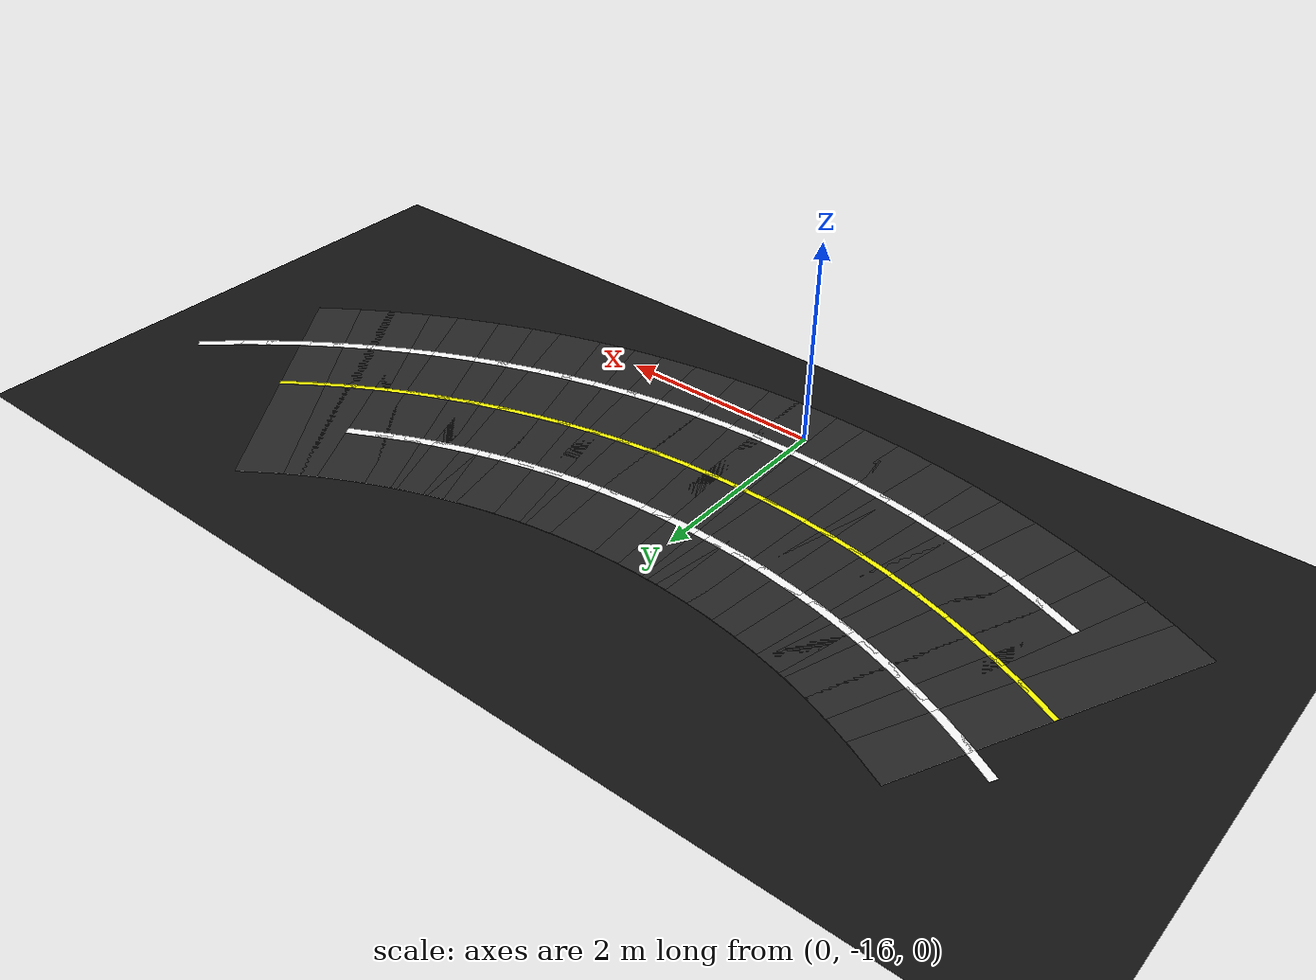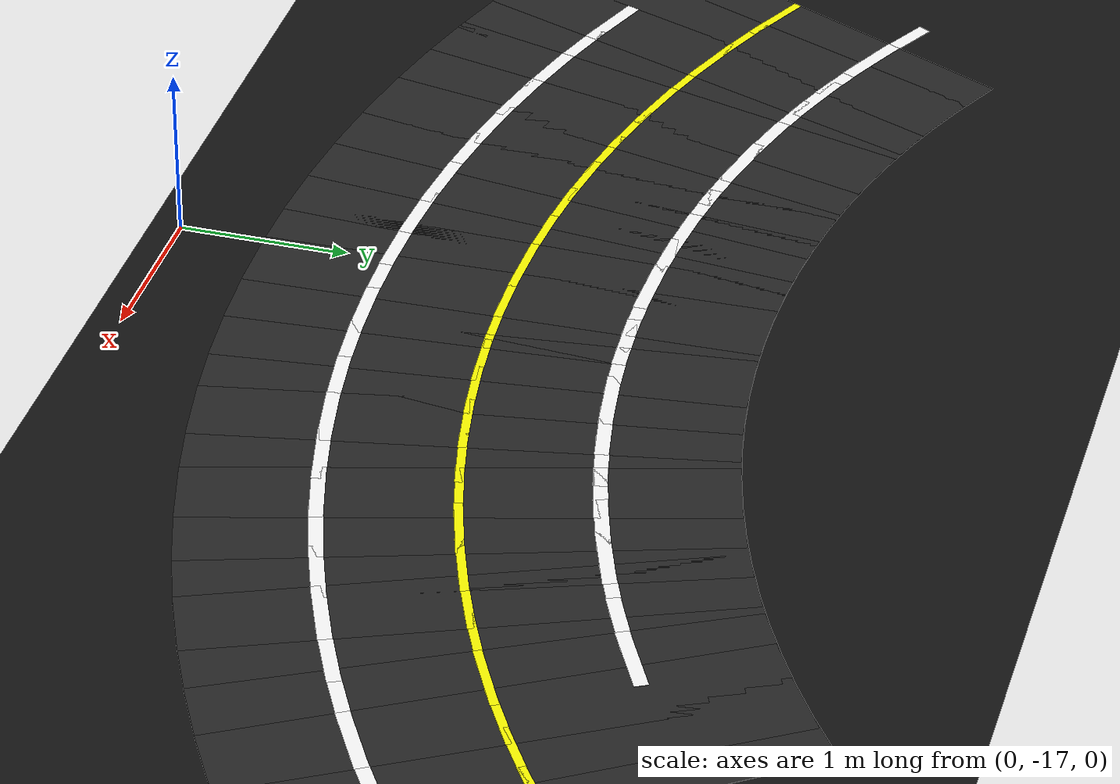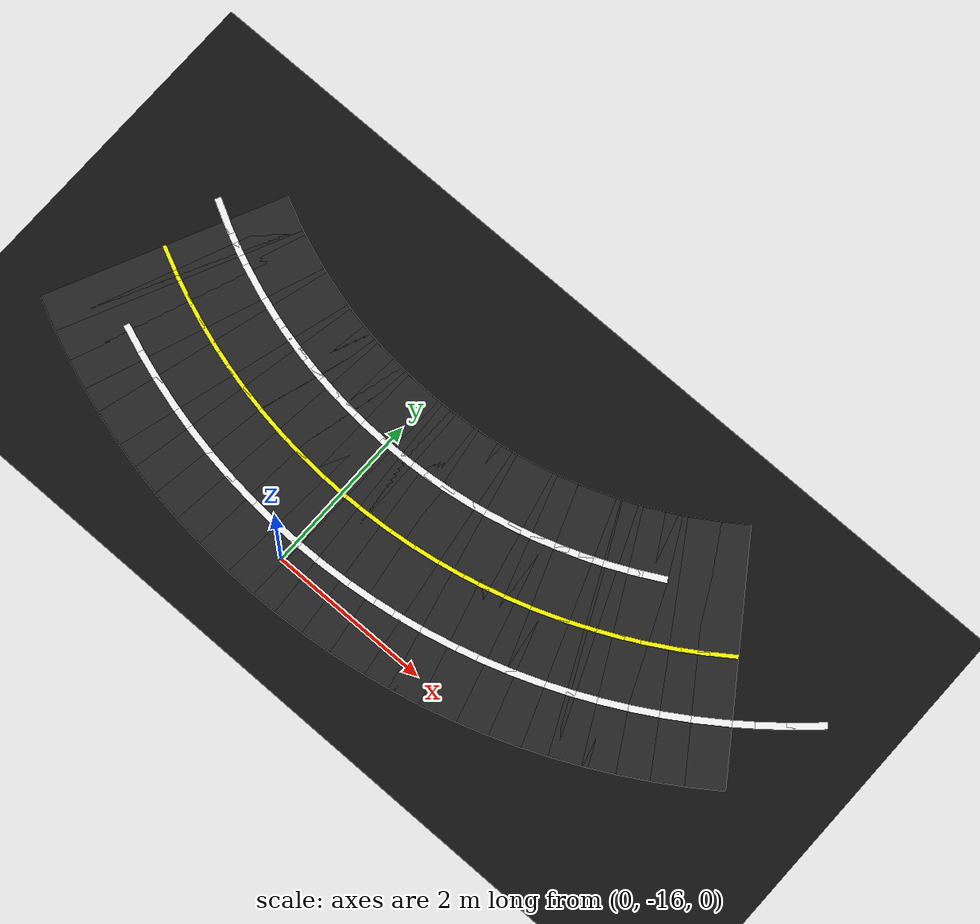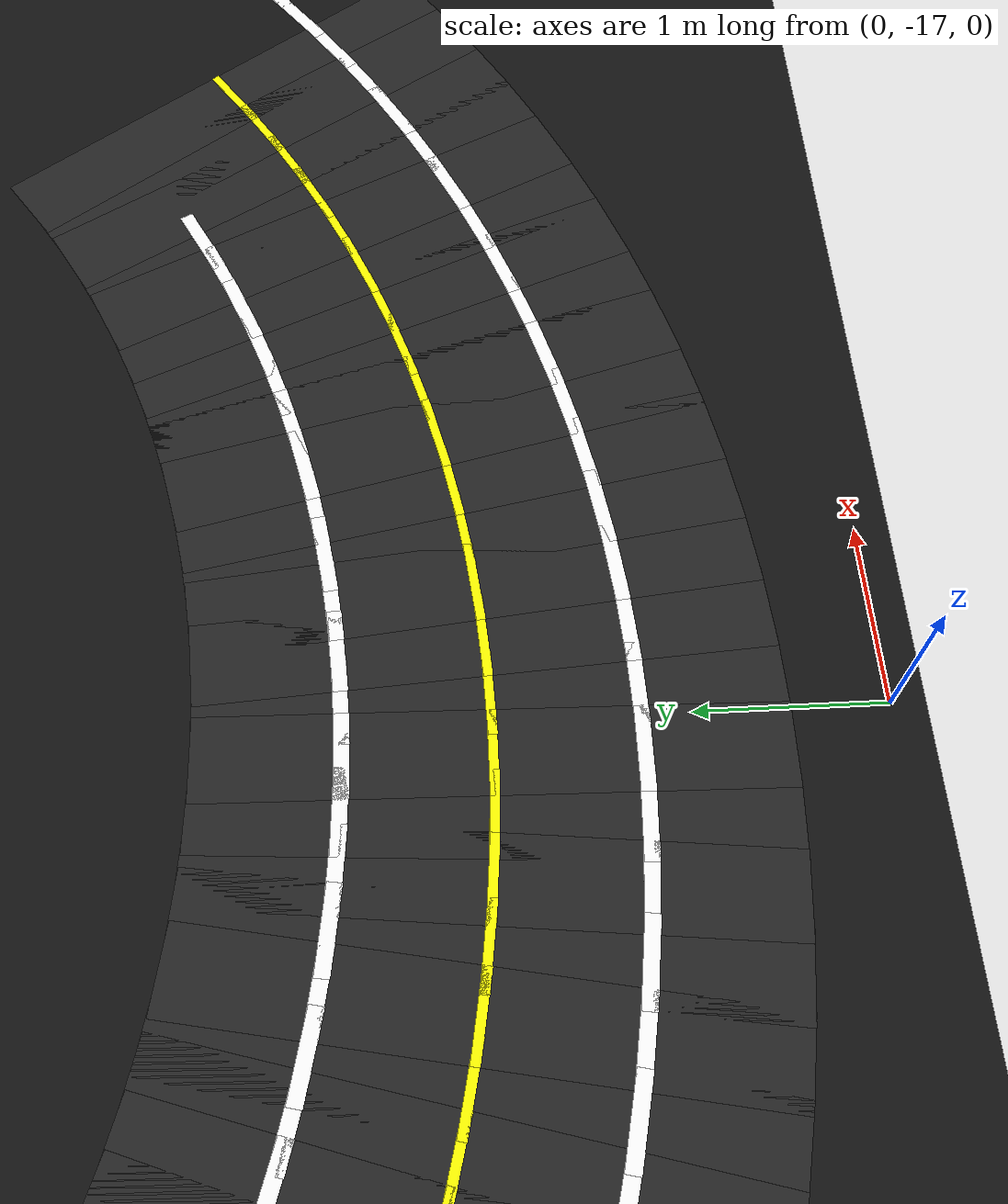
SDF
<sdf version="1.6">
 <world name="figure8_world">
  <model name="ground_plane">
   <static>true</static>
   <link name="link">
    <collision name="collision">
     <geometry><plane><normal>0 0 1</normal><size>100 100</size></plane></geometry>
    </collision>
    <visual name="visual">
     <geometry><plane><normal>0 0 1</normal><size>100 100</size></plane></geometry>
     <material><ambient>0.08 0.08 0.08 1</ambient><diffuse>0.08 0.08 0.08 1</diffuse></material>
    </visual>
   </link>
  </model>
  <model name="seg_00757">
   <static>true</static>
   <pose>5.5504 -13.6037 0.0030 0 0 -2.4036</pose>
   <link name="link">
    <collision name="collision"><geometry><box><size>0.4500 0.0800 0.002</size></box></geometry></collision>
    <visual name="visual">
     <geometry><box><size>0.4500 0.0800 0.002</size></box></geometry>
     <material><ambient>1 1 1 1</ambient><diffuse>1 1 1 1</diffuse></material>
    </visual>
   </link>
  </model>
  <model name="seg_00761">
   <static>true</static>
   <pose>5.2882 -13.8323 0.0030 0 0 -2.4458</pose>
   <link name="link">
    <collision name="collision"><geometry><box><size>0.4500 0.0800 0.002</size></box></geometry></collision>
    <visual name="visual">
     <geometry><box><size>0.4500 0.0800 0.002</size></box></geometry>
     <material><ambient>1 1 1 1</ambient><diffuse>1 1 1 1</diffuse></material>
    </visual>
   </link>
  </model>
  <model name="seg_00765">
   <static>true</static>
   <pose>5.0165 -14.0496 0.0030 0 0 -2.4880</pose>
   <link name="link">
    <collision name="collision"><geometry><box><size>0.4500 0.0800 0.002</size></box></geometry></collision>
    <visual name="visual">
     <geometry><box><size>0.4500 0.0800 0.002</size></box></geometry>
     <material><ambient>1 1 1 1</ambient><diffuse>1 1 1 1</diffuse></material>
    </visual>
   </link>
  </model>
  <model name="seg_00768">
   <static>true</static>
   <pose>4.3054 -13.6411 0.0010 0 0 -2.5301</pose>
   <link name="link">
    <collision name="collision"><geometry><box><size>0.4500 3.0000 0.002</size></box></geometry></collision>
    <visual name="visual">
     <geometry><box><size>0.4500 3.0000 0.002</size></box></geometry>
     <material><ambient>0.15 0.15 0.15 1</ambient><diffuse>0.15 0.15 0.15 1</diffuse></material>
    </visual>
   </link>
  </model>
  <model name="seg_00769">
   <static>true</static>
   <pose>4.7360 -14.2552 0.0030 0 0 -2.5301</pose>
   <link name="link">
    <collision name="collision"><geometry><box><size>0.4500 0.0800 0.002</size></box></geometry></collision>
    <visual name="visual">
     <geometry><box><size>0.4500 0.0800 0.002</size></box></geometry>
     <material><ambient>1 1 1 1</ambient><diffuse>1 1 1 1</diffuse></material>
    </visual>
   </link>
  </model>
  <model name="seg_00771">
   <static>true</static>
   <pose>4.3054 -13.6411 0.0030 0 0 -2.5301</pose>
   <link name="link">
    <collision name="collision"><geometry><box><size>0.4500 0.0500 0.002</size></box></geometry></collision>
    <visual name="visual">
     <geometry><box><size>0.4500 0.0500 0.002</size></box></geometry>
     <material><ambient>1 1 0 1</ambient><diffuse>1 1 0 1</diffuse></material>
    </visual>
   </link>
  </model>
  <model name="seg_00772">
   <static>true</static>
   <pose>4.0427 -13.8172 0.0010 0 0 -2.5723</pose>
   <link name="link">
    <collision name="collision"><geometry><box><size>0.4500 3.0000 0.002</size></box></geometry></collision>
    <visual name="visual">
     <geometry><box><size>0.4500 3.0000 0.002</size></box></geometry>
     <material><ambient>0.15 0.15 0.15 1</ambient><diffuse>0.15 0.15 0.15 1</diffuse></material>
    </visual>
   </link>
  </model>
  <model name="seg_00773">
   <static>true</static>
   <pose>4.4470 -14.4489 0.0030 0 0 -2.5723</pose>
   <link name="link">
    <collision name="collision"><geometry><box><size>0.4500 0.0800 0.002</size></box></geometry></collision>
    <visual name="visual">
     <geometry><box><size>0.4500 0.0800 0.002</size></box></geometry>
     <material><ambient>1 1 1 1</ambient><diffuse>1 1 1 1</diffuse></material>
    </visual>
   </link>
  </model>
  <model name="seg_00775">
   <static>true</static>
   <pose>4.0427 -13.8172 0.0030 0 0 -2.5723</pose>
   <link name="link">
    <collision name="collision"><geometry><box><size>0.4500 0.0500 0.002</size></box></geometry></collision>
    <visual name="visual">
     <geometry><box><size>0.4500 0.0500 0.002</size></box></geometry>
     <material><ambient>1 1 0 1</ambient><diffuse>1 1 0 1</diffuse></material>
    </visual>
   </link>
  </model>
  <model name="seg_00776">
   <static>true</static>
   <pose>3.7728 -13.9820 0.0010 0 0 -2.6145</pose>
   <link name="link">
    <collision name="collision"><geometry><box><size>0.4500 3.0000 0.002</size></box></geometry></collision>
    <visual name="visual">
     <geometry><box><size>0.4500 3.0000 0.002</size></box></geometry>
     <material><ambient>0.15 0.15 0.15 1</ambient><diffuse>0.15 0.15 0.15 1</diffuse></material>
    </visual>
   </link>
  </model>
  <model name="seg_00777">
   <static>true</static>
   <pose>4.1501 -14.6302 0.0030 0 0 -2.6145</pose>
   <link name="link">
    <collision name="collision"><geometry><box><size>0.4500 0.0800 0.002</size></box></geometry></collision>
    <visual name="visual">
     <geometry><box><size>0.4500 0.0800 0.002</size></box></geometry>
     <material><ambient>1 1 1 1</ambient><diffuse>1 1 1 1</diffuse></material>
    </visual>
   </link>
  </model>
  <model name="seg_00779">
   <static>true</static>
   <pose>3.7728 -13.9820 0.0030 0 0 -2.6145</pose>
   <link name="link">
    <collision name="collision"><geometry><box><size>0.4500 0.0500 0.002</size></box></geometry></collision>
    <visual name="visual">
     <geometry><box><size>0.4500 0.0500 0.002</size></box></geometry>
     <material><ambient>1 1 0 1</ambient><diffuse>1 1 0 1</diffuse></material>
    </visual>
   </link>
  </model>
  <model name="seg_00780">
   <static>true</static>
   <pose>3.4962 -14.1353 0.0010 0 0 -2.6566</pose>
   <link name="link">
    <collision name="collision"><geometry><box><size>0.4500 3.0000 0.002</size></box></geometry></collision>
    <visual name="visual">
     <geometry><box><size>0.4500 3.0000 0.002</size></box></geometry>
     <material><ambient>0.15 0.15 0.15 1</ambient><diffuse>0.15 0.15 0.15 1</diffuse></material>
    </visual>
   </link>
  </model>
  <model name="seg_00781">
   <static>true</static>
   <pose>3.8458 -14.7988 0.0030 0 0 -2.6566</pose>
   <link name="link">
    <collision name="collision"><geometry><box><size>0.4500 0.0800 0.002</size></box></geometry></collision>
    <visual name="visual">
     <geometry><box><size>0.4500 0.0800 0.002</size></box></geometry>
     <material><ambient>1 1 1 1</ambient><diffuse>1 1 1 1</diffuse></material>
    </visual>
   </link>
  </model>
  <model name="seg_00782">
   <static>true</static>
   <pose>3.1466 -13.4717 0.0030 0 0 -2.6566</pose>
   <link name="link">
    <collision name="collision"><geometry><box><size>0.4500 0.0800 0.002</size></box></geometry></collision>
    <visual name="visual">
     <geometry><box><size>0.4500 0.0800 0.002</size></box></geometry>
     <material><ambient>1 1 1 1</ambient><diffuse>1 1 1 1</diffuse></material>
    </visual>
   </link>
  </model>
  <model name="seg_00783">
   <static>true</static>
   <pose>3.4962 -14.1353 0.0030 0 0 -2.6566</pose>
   <link name="link">
    <collision name="collision"><geometry><box><size>0.4500 0.0500 0.002</size></box></geometry></collision>
    <visual name="visual">
     <geometry><box><size>0.4500 0.0500 0.002</size></box></geometry>
     <material><ambient>1 1 0 1</ambient><diffuse>1 1 0 1</diffuse></material>
    </visual>
   </link>
  </model>
  <model name="seg_00784">
   <static>true</static>
   <pose>3.2134 -14.2767 0.0010 0 0 -2.6988</pose>
   <link name="link">
    <collision name="collision"><geometry><box><size>0.4500 3.0000 0.002</size></box></geometry></collision>
    <visual name="visual">
     <geometry><box><size>0.4500 3.0000 0.002</size></box></geometry>
     <material><ambient>0.15 0.15 0.15 1</ambient><diffuse>0.15 0.15 0.15 1</diffuse></material>
    </visual>
   </link>
  </model>
  <model name="seg_00785">
   <static>true</static>
   <pose>3.5347 -14.9544 0.0030 0 0 -2.6988</pose>
   <link name="link">
    <collision name="collision"><geometry><box><size>0.4500 0.0800 0.002</size></box></geometry></collision>
    <visual name="visual">
     <geometry><box><size>0.4500 0.0800 0.002</size></box></geometry>
     <material><ambient>1 1 1 1</ambient><diffuse>1 1 1 1</diffuse></material>
    </visual>
   </link>
  </model>
  <model name="seg_00786">
   <static>true</static>
   <pose>2.8920 -13.5991 0.0030 0 0 -2.6988</pose>
   <link name="link">
    <collision name="collision"><geometry><box><size>0.4500 0.0800 0.002</size></box></geometry></collision>
    <visual name="visual">
     <geometry><box><size>0.4500 0.0800 0.002</size></box></geometry>
     <material><ambient>1 1 1 1</ambient><diffuse>1 1 1 1</diffuse></material>
    </visual>
   </link>
  </model>
  <model name="seg_00787">
   <static>true</static>
   <pose>3.2134 -14.2767 0.0030 0 0 -2.6988</pose>
   <link name="link">
    <collision name="collision"><geometry><box><size>0.4500 0.0500 0.002</size></box></geometry></collision>
    <visual name="visual">
     <geometry><box><size>0.4500 0.0500 0.002</size></box></geometry>
     <material><ambient>1 1 0 1</ambient><diffuse>1 1 0 1</diffuse></material>
    </visual>
   </link>
  </model>
  <model name="seg_00788">
   <static>true</static>
   <pose>2.9248 -14.4062 0.0010 0 0 -2.7410</pose>
   <link name="link">
    <collision name="collision"><geometry><box><size>0.4500 3.0000 0.002</size></box></geometry></collision>
    <visual name="visual">
     <geometry><box><size>0.4500 3.0000 0.002</size></box></geometry>
     <material><ambient>0.15 0.15 0.15 1</ambient><diffuse>0.15 0.15 0.15 1</diffuse></material>
    </visual>
   </link>
  </model>
  <model name="seg_00789">
   <static>true</static>
   <pose>3.2173 -15.0968 0.0030 0 0 -2.7410</pose>
   <link name="link">
    <collision name="collision"><geometry><box><size>0.4500 0.0800 0.002</size></box></geometry></collision>
    <visual name="visual">
     <geometry><box><size>0.4500 0.0800 0.002</size></box></geometry>
     <material><ambient>1 1 1 1</ambient><diffuse>1 1 1 1</diffuse></material>
    </visual>
   </link>
  </model>
  <model name="seg_00790">
   <static>true</static>
   <pose>2.6323 -13.7156 0.0030 0 0 -2.7410</pose>
   <link name="link">
    <collision name="collision"><geometry><box><size>0.4500 0.0800 0.002</size></box></geometry></collision>
    <visual name="visual">
     <geometry><box><size>0.4500 0.0800 0.002</size></box></geometry>
     <material><ambient>1 1 1 1</ambient><diffuse>1 1 1 1</diffuse></material>
    </visual>
   </link>
  </model>
  <model name="seg_00791">
   <static>true</static>
   <pose>2.9248 -14.4062 0.0030 0 0 -2.7410</pose>
   <link name="link">
    <collision name="collision"><geometry><box><size>0.4500 0.0500 0.002</size></box></geometry></collision>
    <visual name="visual">
     <geometry><box><size>0.4500 0.0500 0.002</size></box></geometry>
     <material><ambient>1 1 0 1</ambient><diffuse>1 1 0 1</diffuse></material>
    </visual>
   </link>
  </model>
  <model name="seg_00792">
   <static>true</static>
   <pose>2.6311 -14.5233 0.0010 0 0 -2.7832</pose>
   <link name="link">
    <collision name="collision"><geometry><box><size>0.4500 3.0000 0.002</size></box></geometry></collision>
    <visual name="visual">
     <geometry><box><size>0.4500 3.0000 0.002</size></box></geometry>
     <material><ambient>0.15 0.15 0.15 1</ambient><diffuse>0.15 0.15 0.15 1</diffuse></material>
    </visual>
   </link>
  </model>
  <model name="seg_00793">
   <static>true</static>
   <pose>2.8942 -15.2257 0.0030 0 0 -2.7832</pose>
   <link name="link">
    <collision name="collision"><geometry><box><size>0.4500 0.0800 0.002</size></box></geometry></collision>
    <visual name="visual">
     <geometry><box><size>0.4500 0.0800 0.002</size></box></geometry>
     <material><ambient>1 1 1 1</ambient><diffuse>1 1 1 1</diffuse></material>
    </visual>
   </link>
  </model>
  <model name="seg_00794">
   <static>true</static>
   <pose>2.3680 -13.8210 0.0030 0 0 -2.7832</pose>
   <link name="link">
    <collision name="collision"><geometry><box><size>0.4500 0.0800 0.002</size></box></geometry></collision>
    <visual name="visual">
     <geometry><box><size>0.4500 0.0800 0.002</size></box></geometry>
     <material><ambient>1 1 1 1</ambient><diffuse>1 1 1 1</diffuse></material>
    </visual>
   </link>
  </model>
  <model name="seg_00795">
   <static>true</static>
   <pose>2.6311 -14.5233 0.0030 0 0 -2.7832</pose>
   <link name="link">
    <collision name="collision"><geometry><box><size>0.4500 0.0500 0.002</size></box></geometry></collision>
    <visual name="visual">
     <geometry><box><size>0.4500 0.0500 0.002</size></box></geometry>
     <material><ambient>1 1 0 1</ambient><diffuse>1 1 0 1</diffuse></material>
    </visual>
   </link>
  </model>
  <model name="seg_00796">
   <static>true</static>
   <pose>2.3327 -14.6280 0.0010 0 0 -2.8253</pose>
   <link name="link">
    <collision name="collision"><geometry><box><size>0.4500 3.0000 0.002</size></box></geometry></collision>
    <visual name="visual">
     <geometry><box><size>0.4500 3.0000 0.002</size></box></geometry>
     <material><ambient>0.15 0.15 0.15 1</ambient><diffuse>0.15 0.15 0.15 1</diffuse></material>
    </visual>
   </link>
  </model>
  <model name="seg_00797">
   <static>true</static>
   <pose>2.5659 -15.3408 0.0030 0 0 -2.8253</pose>
   <link name="link">
    <collision name="collision"><geometry><box><size>0.4500 0.0800 0.002</size></box></geometry></collision>
    <visual name="visual">
     <geometry><box><size>0.4500 0.0800 0.002</size></box></geometry>
     <material><ambient>1 1 1 1</ambient><diffuse>1 1 1 1</diffuse></material>
    </visual>
   </link>
  </model>
  <model name="seg_00798">
   <static>true</static>
   <pose>2.0994 -13.9152 0.0030 0 0 -2.8253</pose>
   <link name="link">
    <collision name="collision"><geometry><box><size>0.4500 0.0800 0.002</size></box></geometry></collision>
    <visual name="visual">
     <geometry><box><size>0.4500 0.0800 0.002</size></box></geometry>
     <material><ambient>1 1 1 1</ambient><diffuse>1 1 1 1</diffuse></material>
    </visual>
   </link>
  </model>
  <model name="seg_00799">
   <static>true</static>
   <pose>2.3327 -14.6280 0.0030 0 0 -2.8253</pose>
   <link name="link">
    <collision name="collision"><geometry><box><size>0.4500 0.0500 0.002</size></box></geometry></collision>
    <visual name="visual">
     <geometry><box><size>0.4500 0.0500 0.002</size></box></geometry>
     <material><ambient>1 1 0 1</ambient><diffuse>1 1 0 1</diffuse></material>
    </visual>
   </link>
  </model>
  <model name="seg_00800">
   <static>true</static>
   <pose>2.0301 -14.7200 0.0010 0 0 -2.8675</pose>
   <link name="link">
    <collision name="collision"><geometry><box><size>0.4500 3.0000 0.002</size></box></geometry></collision>
    <visual name="visual">
     <geometry><box><size>0.4500 3.0000 0.002</size></box></geometry>
     <material><ambient>0.15 0.15 0.15 1</ambient><diffuse>0.15 0.15 0.15 1</diffuse></material>
    </visual>
   </link>
  </model>
  <model name="seg_00801">
   <static>true</static>
   <pose>2.2331 -15.4420 0.0030 0 0 -2.8675</pose>
   <link name="link">
    <collision name="collision"><geometry><box><size>0.4500 0.0800 0.002</size></box></geometry></collision>
    <visual name="visual">
     <geometry><box><size>0.4500 0.0800 0.002</size></box></geometry>
     <material><ambient>1 1 1 1</ambient><diffuse>1 1 1 1</diffuse></material>
    </visual>
   </link>
  </model>
  <model name="seg_00802">
   <static>true</static>
   <pose>1.8271 -13.9980 0.0030 0 0 -2.8675</pose>
   <link name="link">
    <collision name="collision"><geometry><box><size>0.4500 0.0800 0.002</size></box></geometry></collision>
    <visual name="visual">
     <geometry><box><size>0.4500 0.0800 0.002</size></box></geometry>
     <material><ambient>1 1 1 1</ambient><diffuse>1 1 1 1</diffuse></material>
    </visual>
   </link>
  </model>
  <model name="seg_00803">
   <static>true</static>
   <pose>2.0301 -14.7200 0.0030 0 0 -2.8675</pose>
   <link name="link">
    <collision name="collision"><geometry><box><size>0.4500 0.0500 0.002</size></box></geometry></collision>
    <visual name="visual">
     <geometry><box><size>0.4500 0.0500 0.002</size></box></geometry>
     <material><ambient>1 1 0 1</ambient><diffuse>1 1 0 1</diffuse></material>
    </visual>
   </link>
  </model>
  <model name="seg_00804">
   <static>true</static>
   <pose>1.7239 -14.7992 0.0010 0 0 -2.9097</pose>
   <link name="link">
    <collision name="collision"><geometry><box><size>0.4500 3.0000 0.002</size></box></geometry></collision>
    <visual name="visual">
     <geometry><box><size>0.4500 3.0000 0.002</size></box></geometry>
     <material><ambient>0.15 0.15 0.15 1</ambient><diffuse>0.15 0.15 0.15 1</diffuse></material>
    </visual>
   </link>
  </model>
  <model name="seg_00805">
   <static>true</static>
   <pose>1.8963 -15.5291 0.0030 0 0 -2.9097</pose>
   <link name="link">
    <collision name="collision"><geometry><box><size>0.4500 0.0800 0.002</size></box></geometry></collision>
    <visual name="visual">
     <geometry><box><size>0.4500 0.0800 0.002</size></box></geometry>
     <material><ambient>1 1 1 1</ambient><diffuse>1 1 1 1</diffuse></material>
    </visual>
   </link>
  </model>
  <model name="seg_00806">
   <static>true</static>
   <pose>1.5515 -14.0693 0.0030 0 0 -2.9097</pose>
   <link name="link">
    <collision name="collision"><geometry><box><size>0.4500 0.0800 0.002</size></box></geometry></collision>
    <visual name="visual">
     <geometry><box><size>0.4500 0.0800 0.002</size></box></geometry>
     <material><ambient>1 1 1 1</ambient><diffuse>1 1 1 1</diffuse></material>
    </visual>
   </link>
  </model>
  <model name="seg_00807">
   <static>true</static>
   <pose>1.7239 -14.7992 0.0030 0 0 -2.9097</pose>
   <link name="link">
    <collision name="collision"><geometry><box><size>0.4500 0.0500 0.002</size></box></geometry></collision>
    <visual name="visual">
     <geometry><box><size>0.4500 0.0500 0.002</size></box></geometry>
     <material><ambient>1 1 0 1</ambient><diffuse>1 1 0 1</diffuse></material>
    </visual>
   </link>
  </model>
  <model name="seg_00808">
   <static>true</static>
   <pose>1.4147 -14.8654 0.0010 0 0 -2.9518</pose>
   <link name="link">
    <collision name="collision"><geometry><box><size>0.4500 3.0000 0.002</size></box></geometry></collision>
    <visual name="visual">
     <geometry><box><size>0.4500 3.0000 0.002</size></box></geometry>
     <material><ambient>0.15 0.15 0.15 1</ambient><diffuse>0.15 0.15 0.15 1</diffuse></material>
    </visual>
   </link>
  </model>
  <model name="seg_00809">
   <static>true</static>
   <pose>1.5561 -15.6019 0.0030 0 0 -2.9518</pose>
   <link name="link">
    <collision name="collision"><geometry><box><size>0.4500 0.0800 0.002</size></box></geometry></collision>
    <visual name="visual">
     <geometry><box><size>0.4500 0.0800 0.002</size></box></geometry>
     <material><ambient>1 1 1 1</ambient><diffuse>1 1 1 1</diffuse></material>
    </visual>
   </link>
  </model>
  <model name="seg_00810">
   <static>true</static>
   <pose>1.2732 -14.1288 0.0030 0 0 -2.9518</pose>
   <link name="link">
    <collision name="collision"><geometry><box><size>0.4500 0.0800 0.002</size></box></geometry></collision>
    <visual name="visual">
     <geometry><box><size>0.4500 0.0800 0.002</size></box></geometry>
     <material><ambient>1 1 1 1</ambient><diffuse>1 1 1 1</diffuse></material>
    </visual>
   </link>
  </model>
  <model name="seg_00811">
   <static>true</static>
   <pose>1.4147 -14.8654 0.0030 0 0 -2.9518</pose>
   <link name="link">
    <collision name="collision"><geometry><box><size>0.4500 0.0500 0.002</size></box></geometry></collision>
    <visual name="visual">
     <geometry><box><size>0.4500 0.0500 0.002</size></box></geometry>
     <material><ambient>1 1 0 1</ambient><diffuse>1 1 0 1</diffuse></material>
    </visual>
   </link>
  </model>
  <model name="seg_00812">
   <static>true</static>
   <pose>1.1029 -14.9185 0.0010 0 0 -2.9940</pose>
   <link name="link">
    <collision name="collision"><geometry><box><size>0.4500 3.0000 0.002</size></box></geometry></collision>
    <visual name="visual">
     <geometry><box><size>0.4500 3.0000 0.002</size></box></geometry>
     <material><ambient>0.15 0.15 0.15 1</ambient><diffuse>0.15 0.15 0.15 1</diffuse></material>
    </visual>
   </link>
  </model>
  <model name="seg_00813">
   <static>true</static>
   <pose>1.2132 -15.6603 0.0030 0 0 -2.9940</pose>
   <link name="link">
    <collision name="collision"><geometry><box><size>0.4500 0.0800 0.002</size></box></geometry></collision>
    <visual name="visual">
     <geometry><box><size>0.4500 0.0800 0.002</size></box></geometry>
     <material><ambient>1 1 1 1</ambient><diffuse>1 1 1 1</diffuse></material>
    </visual>
   </link>
  </model>
  <model name="seg_00814">
   <static>true</static>
   <pose>0.9926 -14.1766 0.0030 0 0 -2.9940</pose>
   <link name="link">
    <collision name="collision"><geometry><box><size>0.4500 0.0800 0.002</size></box></geometry></collision>
    <visual name="visual">
     <geometry><box><size>0.4500 0.0800 0.002</size></box></geometry>
     <material><ambient>1 1 1 1</ambient><diffuse>1 1 1 1</diffuse></material>
    </visual>
   </link>
  </model>
  <model name="seg_00815">
   <static>true</static>
   <pose>1.1029 -14.9185 0.0030 0 0 -2.9940</pose>
   <link name="link">
    <collision name="collision"><geometry><box><size>0.4500 0.0500 0.002</size></box></geometry></collision>
    <visual name="visual">
     <geometry><box><size>0.4500 0.0500 0.002</size></box></geometry>
     <material><ambient>1 1 0 1</ambient><diffuse>1 1 0 1</diffuse></material>
    </visual>
   </link>
  </model>
  <model name="seg_00816">
   <static>true</static>
   <pose>0.7892 -14.9584 0.0010 0 0 -3.0362</pose>
   <link name="link">
    <collision name="collision"><geometry><box><size>0.4500 3.0000 0.002</size></box></geometry></collision>
    <visual name="visual">
     <geometry><box><size>0.4500 3.0000 0.002</size></box></geometry>
     <material><ambient>0.15 0.15 0.15 1</ambient><diffuse>0.15 0.15 0.15 1</diffuse></material>
    </visual>
   </link>
  </model>
  <model name="seg_00817">
   <static>true</static>
   <pose>0.8681 -15.7042 0.0030 0 0 -3.0362</pose>
   <link name="link">
    <collision name="collision"><geometry><box><size>0.4500 0.0800 0.002</size></box></geometry></collision>
    <visual name="visual">
     <geometry><box><size>0.4500 0.0800 0.002</size></box></geometry>
     <material><ambient>1 1 1 1</ambient><diffuse>1 1 1 1</diffuse></material>
    </visual>
   </link>
  </model>
  <model name="seg_00818">
   <static>true</static>
   <pose>0.7103 -14.2125 0.0030 0 0 -3.0362</pose>
   <link name="link">
    <collision name="collision"><geometry><box><size>0.4500 0.0800 0.002</size></box></geometry></collision>
    <visual name="visual">
     <geometry><box><size>0.4500 0.0800 0.002</size></box></geometry>
     <material><ambient>1 1 1 1</ambient><diffuse>1 1 1 1</diffuse></material>
    </visual>
   </link>
  </model>
  <model name="seg_00819">
   <static>true</static>
   <pose>0.7892 -14.9584 0.0030 0 0 -3.0362</pose>
   <link name="link">
    <collision name="collision"><geometry><box><size>0.4500 0.0500 0.002</size></box></geometry></collision>
    <visual name="visual">
     <geometry><box><size>0.4500 0.0500 0.002</size></box></geometry>
     <material><ambient>1 1 0 1</ambient><diffuse>1 1 0 1</diffuse></material>
    </visual>
   </link>
  </model>
  <model name="seg_00820">
   <static>true</static>
   <pose>0.4741 -14.9850 0.0010 0 0 -3.0783</pose>
   <link name="link">
    <collision name="collision"><geometry><box><size>0.4500 3.0000 0.002</size></box></geometry></collision>
    <visual name="visual">
     <geometry><box><size>0.4500 3.0000 0.002</size></box></geometry>
     <material><ambient>0.15 0.15 0.15 1</ambient><diffuse>0.15 0.15 0.15 1</diffuse></material>
    </visual>
   </link>
  </model>
  <model name="seg_00821">
   <static>true</static>
   <pose>0.5215 -15.7335 0.0030 0 0 -3.0783</pose>
   <link name="link">
    <collision name="collision"><geometry><box><size>0.4500 0.0800 0.002</size></box></geometry></collision>
    <visual name="visual">
     <geometry><box><size>0.4500 0.0800 0.002</size></box></geometry>
     <material><ambient>1 1 1 1</ambient><diffuse>1 1 1 1</diffuse></material>
    </visual>
   </link>
  </model>
  <model name="seg_00822">
   <static>true</static>
   <pose>0.4267 -14.2365 0.0030 0 0 -3.0783</pose>
   <link name="link">
    <collision name="collision"><geometry><box><size>0.4500 0.0800 0.002</size></box></geometry></collision>
    <visual name="visual">
     <geometry><box><size>0.4500 0.0800 0.002</size></box></geometry>
     <material><ambient>1 1 1 1</ambient><diffuse>1 1 1 1</diffuse></material>
    </visual>
   </link>
  </model>
  <model name="seg_00823">
   <static>true</static>
   <pose>0.4741 -14.9850 0.0030 0 0 -3.0783</pose>
   <link name="link">
    <collision name="collision"><geometry><box><size>0.4500 0.0500 0.002</size></box></geometry></collision>
    <visual name="visual">
     <geometry><box><size>0.4500 0.0500 0.002</size></box></geometry>
     <material><ambient>1 1 0 1</ambient><diffuse>1 1 0 1</diffuse></material>
    </visual>
   </link>
  </model>
  <model name="seg_00824">
   <static>true</static>
   <pose>0.1581 -14.9983 0.0010 0 0 -3.1205</pose>
   <link name="link">
    <collision name="collision"><geometry><box><size>0.4500 3.0000 0.002</size></box></geometry></collision>
    <visual name="visual">
     <geometry><box><size>0.4500 3.0000 0.002</size></box></geometry>
     <material><ambient>0.15 0.15 0.15 1</ambient><diffuse>0.15 0.15 0.15 1</diffuse></material>
    </visual>
   </link>
  </model>
  <model name="seg_00825">
   <static>true</static>
   <pose>0.1739 -15.7482 0.0030 0 0 -3.1205</pose>
   <link name="link">
    <collision name="collision"><geometry><box><size>0.4500 0.0800 0.002</size></box></geometry></collision>
    <visual name="visual">
     <geometry><box><size>0.4500 0.0800 0.002</size></box></geometry>
     <material><ambient>1 1 1 1</ambient><diffuse>1 1 1 1</diffuse></material>
    </visual>
   </link>
  </model>
  <model name="seg_00826">
   <static>true</static>
   <pose>0.1423 -14.2485 0.0030 0 0 -3.1205</pose>
   <link name="link">
    <collision name="collision"><geometry><box><size>0.4500 0.0800 0.002</size></box></geometry></collision>
    <visual name="visual">
     <geometry><box><size>0.4500 0.0800 0.002</size></box></geometry>
     <material><ambient>1 1 1 1</ambient><diffuse>1 1 1 1</diffuse></material>
    </visual>
   </link>
  </model>
  <model name="seg_00827">
   <static>true</static>
   <pose>0.1581 -14.9983 0.0030 0 0 -3.1205</pose>
   <link name="link">
    <collision name="collision"><geometry><box><size>0.4500 0.0500 0.002</size></box></geometry></collision>
    <visual name="visual">
     <geometry><box><size>0.4500 0.0500 0.002</size></box></geometry>
     <material><ambient>1 1 0 1</ambient><diffuse>1 1 0 1</diffuse></material>
    </visual>
   </link>
  </model>
  <model name="seg_00828">
   <static>true</static>
   <pose>-0.1581 -14.9983 0.0010 0 0 3.1205</pose>
   <link name="link">
    <collision name="collision"><geometry><box><size>0.4500 3.0000 0.002</size></box></geometry></collision>
    <visual name="visual">
     <geometry><box><size>0.4500 3.0000 0.002</size></box></geometry>
     <material><ambient>0.15 0.15 0.15 1</ambient><diffuse>0.15 0.15 0.15 1</diffuse></material>
    </visual>
   </link>
  </model>
  <model name="seg_00829">
   <static>true</static>
   <pose>-0.1739 -15.7482 0.0030 0 0 3.1205</pose>
   <link name="link">
    <collision name="collision"><geometry><box><size>0.4500 0.0800 0.002</size></box></geometry></collision>
    <visual name="visual">
     <geometry><box><size>0.4500 0.0800 0.002</size></box></geometry>
     <material><ambient>1 1 1 1</ambient><diffuse>1 1 1 1</diffuse></material>
    </visual>
   </link>
  </model>
  <model name="seg_00830">
   <static>true</static>
   <pose>-0.1423 -14.2485 0.0030 0 0 3.1205</pose>
   <link name="link">
    <collision name="collision"><geometry><box><size>0.4500 0.0800 0.002</size></box></geometry></collision>
    <visual name="visual">
     <geometry><box><size>0.4500 0.0800 0.002</size></box></geometry>
     <material><ambient>1 1 1 1</ambient><diffuse>1 1 1 1</diffuse></material>
    </visual>
   </link>
  </model>
  <model name="seg_00831">
   <static>true</static>
   <pose>-0.1581 -14.9983 0.0030 0 0 3.1205</pose>
   <link name="link">
    <collision name="collision"><geometry><box><size>0.4500 0.0500 0.002</size></box></geometry></collision>
    <visual name="visual">
     <geometry><box><size>0.4500 0.0500 0.002</size></box></geometry>
     <material><ambient>1 1 0 1</ambient><diffuse>1 1 0 1</diffuse></material>
    </visual>
   </link>
  </model>
  <model name="seg_00832">
   <static>true</static>
   <pose>-0.4741 -14.9850 0.0010 0 0 3.0783</pose>
   <link name="link">
    <collision name="collision"><geometry><box><size>0.4500 3.0000 0.002</size></box></geometry></collision>
    <visual name="visual">
     <geometry><box><size>0.4500 3.0000 0.002</size></box></geometry>
     <material><ambient>0.15 0.15 0.15 1</ambient><diffuse>0.15 0.15 0.15 1</diffuse></material>
    </visual>
   </link>
  </model>
  <model name="seg_00833">
   <static>true</static>
   <pose>-0.5215 -15.7335 0.0030 0 0 3.0783</pose>
   <link name="link">
    <collision name="collision"><geometry><box><size>0.4500 0.0800 0.002</size></box></geometry></collision>
    <visual name="visual">
     <geometry><box><size>0.4500 0.0800 0.002</size></box></geometry>
     <material><ambient>1 1 1 1</ambient><diffuse>1 1 1 1</diffuse></material>
    </visual>
   </link>
  </model>
  <model name="seg_00834">
   <static>true</static>
   <pose>-0.4267 -14.2365 0.0030 0 0 3.0783</pose>
   <link name="link">
    <collision name="collision"><geometry><box><size>0.4500 0.0800 0.002</size></box></geometry></collision>
    <visual name="visual">
     <geometry><box><size>0.4500 0.0800 0.002</size></box></geometry>
     <material><ambient>1 1 1 1</ambient><diffuse>1 1 1 1</diffuse></material>
    </visual>
   </link>
  </model>
  <model name="seg_00835">
   <static>true</static>
   <pose>-0.4741 -14.9850 0.0030 0 0 3.0783</pose>
   <link name="link">
    <collision name="collision"><geometry><box><size>0.4500 0.0500 0.002</size></box></geometry></collision>
    <visual name="visual">
     <geometry><box><size>0.4500 0.0500 0.002</size></box></geometry>
     <material><ambient>1 1 0 1</ambient><diffuse>1 1 0 1</diffuse></material>
    </visual>
   </link>
  </model>
  <model name="seg_00836">
   <static>true</static>
   <pose>-0.7892 -14.9584 0.0010 0 0 3.0362</pose>
   <link name="link">
    <collision name="collision"><geometry><box><size>0.4500 3.0000 0.002</size></box></geometry></collision>
    <visual name="visual">
     <geometry><box><size>0.4500 3.0000 0.002</size></box></geometry>
     <material><ambient>0.15 0.15 0.15 1</ambient><diffuse>0.15 0.15 0.15 1</diffuse></material>
    </visual>
   </link>
  </model>
  <model name="seg_00837">
   <static>true</static>
   <pose>-0.8681 -15.7042 0.0030 0 0 3.0362</pose>
   <link name="link">
    <collision name="collision"><geometry><box><size>0.4500 0.0800 0.002</size></box></geometry></collision>
    <visual name="visual">
     <geometry><box><size>0.4500 0.0800 0.002</size></box></geometry>
     <material><ambient>1 1 1 1</ambient><diffuse>1 1 1 1</diffuse></material>
    </visual>
   </link>
  </model>
  <model name="seg_00838">
   <static>true</static>
   <pose>-0.7103 -14.2125 0.0030 0 0 3.0362</pose>
   <link name="link">
    <collision name="collision"><geometry><box><size>0.4500 0.0800 0.002</size></box></geometry></collision>
    <visual name="visual">
     <geometry><box><size>0.4500 0.0800 0.002</size></box></geometry>
     <material><ambient>1 1 1 1</ambient><diffuse>1 1 1 1</diffuse></material>
    </visual>
   </link>
  </model>
  <model name="seg_00839">
   <static>true</static>
   <pose>-0.7892 -14.9584 0.0030 0 0 3.0362</pose>
   <link name="link">
    <collision name="collision"><geometry><box><size>0.4500 0.0500 0.002</size></box></geometry></collision>
    <visual name="visual">
     <geometry><box><size>0.4500 0.0500 0.002</size></box></geometry>
     <material><ambient>1 1 0 1</ambient><diffuse>1 1 0 1</diffuse></material>
    </visual>
   </link>
  </model>
  <model name="seg_00840">
   <static>true</static>
   <pose>-1.1029 -14.9185 0.0010 0 0 2.9940</pose>
   <link name="link">
    <collision name="collision"><geometry><box><size>0.4500 3.0000 0.002</size></box></geometry></collision>
    <visual name="visual">
     <geometry><box><size>0.4500 3.0000 0.002</size></box></geometry>
     <material><ambient>0.15 0.15 0.15 1</ambient><diffuse>0.15 0.15 0.15 1</diffuse></material>
    </visual>
   </link>
  </model>
  <model name="seg_00841">
   <static>true</static>
   <pose>-1.2132 -15.6603 0.0030 0 0 2.9940</pose>
   <link name="link">
    <collision name="collision"><geometry><box><size>0.4500 0.0800 0.002</size></box></geometry></collision>
    <visual name="visual">
     <geometry><box><size>0.4500 0.0800 0.002</size></box></geometry>
     <material><ambient>1 1 1 1</ambient><diffuse>1 1 1 1</diffuse></material>
    </visual>
   </link>
  </model>
  <model name="seg_00842">
   <static>true</static>
   <pose>-0.9926 -14.1766 0.0030 0 0 2.9940</pose>
   <link name="link">
    <collision name="collision"><geometry><box><size>0.4500 0.0800 0.002</size></box></geometry></collision>
    <visual name="visual">
     <geometry><box><size>0.4500 0.0800 0.002</size></box></geometry>
     <material><ambient>1 1 1 1</ambient><diffuse>1 1 1 1</diffuse></material>
    </visual>
   </link>
  </model>
  <model name="seg_00843">
   <static>true</static>
   <pose>-1.1029 -14.9185 0.0030 0 0 2.9940</pose>
   <link name="link">
    <collision name="collision"><geometry><box><size>0.4500 0.0500 0.002</size></box></geometry></collision>
    <visual name="visual">
     <geometry><box><size>0.4500 0.0500 0.002</size></box></geometry>
     <material><ambient>1 1 0 1</ambient><diffuse>1 1 0 1</diffuse></material>
    </visual>
   </link>
  </model>
  <model name="seg_00844">
   <static>true</static>
   <pose>-1.4147 -14.8654 0.0010 0 0 2.9518</pose>
   <link name="link">
    <collision name="collision"><geometry><box><size>0.4500 3.0000 0.002</size></box></geometry></collision>
    <visual name="visual">
     <geometry><box><size>0.4500 3.0000 0.002</size></box></geometry>
     <material><ambient>0.15 0.15 0.15 1</ambient><diffuse>0.15 0.15 0.15 1</diffuse></material>
    </visual>
   </link>
  </model>
  <model name="seg_00845">
   <static>true</static>
   <pose>-1.5561 -15.6019 0.0030 0 0 2.9518</pose>
   <link name="link">
    <collision name="collision"><geometry><box><size>0.4500 0.0800 0.002</size></box></geometry></collision>
    <visual name="visual">
     <geometry><box><size>0.4500 0.0800 0.002</size></box></geometry>
     <material><ambient>1 1 1 1</ambient><diffuse>1 1 1 1</diffuse></material>
    </visual>
   </link>
  </model>
  <model name="seg_00846">
   <static>true</static>
   <pose>-1.2732 -14.1288 0.0030 0 0 2.9518</pose>
   <link name="link">
    <collision name="collision"><geometry><box><size>0.4500 0.0800 0.002</size></box></geometry></collision>
    <visual name="visual">
     <geometry><box><size>0.4500 0.0800 0.002</size></box></geometry>
     <material><ambient>1 1 1 1</ambient><diffuse>1 1 1 1</diffuse></material>
    </visual>
   </link>
  </model>
  <model name="seg_00847">
   <static>true</static>
   <pose>-1.4147 -14.8654 0.0030 0 0 2.9518</pose>
   <link name="link">
    <collision name="collision"><geometry><box><size>0.4500 0.0500 0.002</size></box></geometry></collision>
    <visual name="visual">
     <geometry><box><size>0.4500 0.0500 0.002</size></box></geometry>
     <material><ambient>1 1 0 1</ambient><diffuse>1 1 0 1</diffuse></material>
    </visual>
   </link>
  </model>
  <model name="seg_00848">
   <static>true</static>
   <pose>-1.7239 -14.7992 0.0010 0 0 2.9097</pose>
   <link name="link">
    <collision name="collision"><geometry><box><size>0.4500 3.0000 0.002</size></box></geometry></collision>
    <visual name="visual">
     <geometry><box><size>0.4500 3.0000 0.002</size></box></geometry>
     <material><ambient>0.15 0.15 0.15 1</ambient><diffuse>0.15 0.15 0.15 1</diffuse></material>
    </visual>
   </link>
  </model>
  <model name="seg_00849">
   <static>true</static>
   <pose>-1.8963 -15.5291 0.0030 0 0 2.9097</pose>
   <link name="link">
    <collision name="collision"><geometry><box><size>0.4500 0.0800 0.002</size></box></geometry></collision>
    <visual name="visual">
     <geometry><box><size>0.4500 0.0800 0.002</size></box></geometry>
     <material><ambient>1 1 1 1</ambient><diffuse>1 1 1 1</diffuse></material>
    </visual>
   </link>
  </model>
  <model name="seg_00850">
   <static>true</static>
   <pose>-1.5515 -14.0693 0.0030 0 0 2.9097</pose>
   <link name="link">
    <collision name="collision"><geometry><box><size>0.4500 0.0800 0.002</size></box></geometry></collision>
    <visual name="visual">
     <geometry><box><size>0.4500 0.0800 0.002</size></box></geometry>
     <material><ambient>1 1 1 1</ambient><diffuse>1 1 1 1</diffuse></material>
    </visual>
   </link>
  </model>
  <model name="seg_00851">
   <static>true</static>
   <pose>-1.7239 -14.7992 0.0030 0 0 2.9097</pose>
   <link name="link">
    <collision name="collision"><geometry><box><size>0.4500 0.0500 0.002</size></box></geometry></collision>
    <visual name="visual">
     <geometry><box><size>0.4500 0.0500 0.002</size></box></geometry>
     <material><ambient>1 1 0 1</ambient><diffuse>1 1 0 1</diffuse></material>
    </visual>
   </link>
  </model>
  <model name="seg_00852">
   <static>true</static>
   <pose>-2.0301 -14.7200 0.0010 0 0 2.8675</pose>
   <link name="link">
    <collision name="collision"><geometry><box><size>0.4500 3.0000 0.002</size></box></geometry></collision>
    <visual name="visual">
     <geometry><box><size>0.4500 3.0000 0.002</size></box></geometry>
     <material><ambient>0.15 0.15 0.15 1</ambient><diffuse>0.15 0.15 0.15 1</diffuse></material>
    </visual>
   </link>
  </model>
  <model name="seg_00853">
   <static>true</static>
   <pose>-2.2331 -15.4420 0.0030 0 0 2.8675</pose>
   <link name="link">
    <collision name="collision"><geometry><box><size>0.4500 0.0800 0.002</size></box></geometry></collision>
    <visual name="visual">
     <geometry><box><size>0.4500 0.0800 0.002</size></box></geometry>
     <material><ambient>1 1 1 1</ambient><diffuse>1 1 1 1</diffuse></material>
    </visual>
   </link>
  </model>
  <model name="seg_00854">
   <static>true</static>
   <pose>-1.8271 -13.9980 0.0030 0 0 2.8675</pose>
   <link name="link">
    <collision name="collision"><geometry><box><size>0.4500 0.0800 0.002</size></box></geometry></collision>
    <visual name="visual">
     <geometry><box><size>0.4500 0.0800 0.002</size></box></geometry>
     <material><ambient>1 1 1 1</ambient><diffuse>1 1 1 1</diffuse></material>
    </visual>
   </link>
  </model>
  <model name="seg_00855">
   <static>true</static>
   <pose>-2.0301 -14.7200 0.0030 0 0 2.8675</pose>
   <link name="link">
    <collision name="collision"><geometry><box><size>0.4500 0.0500 0.002</size></box></geometry></collision>
    <visual name="visual">
     <geometry><box><size>0.4500 0.0500 0.002</size></box></geometry>
     <material><ambient>1 1 0 1</ambient><diffuse>1 1 0 1</diffuse></material>
    </visual>
   </link>
  </model>
  <model name="seg_00856">
   <static>true</static>
   <pose>-2.3327 -14.6280 0.0010 0 0 2.8253</pose>
   <link name="link">
    <collision name="collision"><geometry><box><size>0.4500 3.0000 0.002</size></box></geometry></collision>
    <visual name="visual">
     <geometry><box><size>0.4500 3.0000 0.002</size></box></geometry>
     <material><ambient>0.15 0.15 0.15 1</ambient><diffuse>0.15 0.15 0.15 1</diffuse></material>
    </visual>
   </link>
  </model>
  <model name="seg_00857">
   <static>true</static>
   <pose>-2.5659 -15.3408 0.0030 0 0 2.8253</pose>
   <link name="link">
    <collision name="collision"><geometry><box><size>0.4500 0.0800 0.002</size></box></geometry></collision>
    <visual name="visual">
     <geometry><box><size>0.4500 0.0800 0.002</size></box></geometry>
     <material><ambient>1 1 1 1</ambient><diffuse>1 1 1 1</diffuse></material>
    </visual>
   </link>
  </model>
  <model name="seg_00858">
   <static>true</static>
   <pose>-2.0994 -13.9152 0.0030 0 0 2.8253</pose>
   <link name="link">
    <collision name="collision"><geometry><box><size>0.4500 0.0800 0.002</size></box></geometry></collision>
    <visual name="visual">
     <geometry><box><size>0.4500 0.0800 0.002</size></box></geometry>
     <material><ambient>1 1 1 1</ambient><diffuse>1 1 1 1</diffuse></material>
    </visual>
   </link>
  </model>
  <model name="seg_00859">
   <static>true</static>
   <pose>-2.3327 -14.6280 0.0030 0 0 2.8253</pose>
   <link name="link">
    <collision name="collision"><geometry><box><size>0.4500 0.0500 0.002</size></box></geometry></collision>
    <visual name="visual">
     <geometry><box><size>0.4500 0.0500 0.002</size></box></geometry>
     <material><ambient>1 1 0 1</ambient><diffuse>1 1 0 1</diffuse></material>
    </visual>
   </link>
  </model>
  <model name="seg_00860">
   <static>true</static>
   <pose>-2.6311 -14.5233 0.0010 0 0 2.7832</pose>
   <link name="link">
    <collision name="collision"><geometry><box><size>0.4500 3.0000 0.002</size></box></geometry></collision>
    <visual name="visual">
     <geometry><box><size>0.4500 3.0000 0.002</size></box></geometry>
     <material><ambient>0.15 0.15 0.15 1</ambient><diffuse>0.15 0.15 0.15 1</diffuse></material>
    </visual>
   </link>
  </model>
  <model name="seg_00861">
   <static>true</static>
   <pose>-2.8942 -15.2257 0.0030 0 0 2.7832</pose>
   <link name="link">
    <collision name="collision"><geometry><box><size>0.4500 0.0800 0.002</size></box></geometry></collision>
    <visual name="visual">
     <geometry><box><size>0.4500 0.0800 0.002</size></box></geometry>
     <material><ambient>1 1 1 1</ambient><diffuse>1 1 1 1</diffuse></material>
    </visual>
   </link>
  </model>
  <model name="seg_00862">
   <static>true</static>
   <pose>-2.3680 -13.8210 0.0030 0 0 2.7832</pose>
   <link name="link">
    <collision name="collision"><geometry><box><size>0.4500 0.0800 0.002</size></box></geometry></collision>
    <visual name="visual">
     <geometry><box><size>0.4500 0.0800 0.002</size></box></geometry>
     <material><ambient>1 1 1 1</ambient><diffuse>1 1 1 1</diffuse></material>
    </visual>
   </link>
  </model>
  <model name="seg_00863">
   <static>true</static>
   <pose>-2.6311 -14.5233 0.0030 0 0 2.7832</pose>
   <link name="link">
    <collision name="collision"><geometry><box><size>0.4500 0.0500 0.002</size></box></geometry></collision>
    <visual name="visual">
     <geometry><box><size>0.4500 0.0500 0.002</size></box></geometry>
     <material><ambient>1 1 0 1</ambient><diffuse>1 1 0 1</diffuse></material>
    </visual>
   </link>
  </model>
  <model name="seg_00864">
   <static>true</static>
   <pose>-2.9248 -14.4062 0.0010 0 0 2.7410</pose>
   <link name="link">
    <collision name="collision"><geometry><box><size>0.4500 3.0000 0.002</size></box></geometry></collision>
    <visual name="visual">
     <geometry><box><size>0.4500 3.0000 0.002</size></box></geometry>
     <material><ambient>0.15 0.15 0.15 1</ambient><diffuse>0.15 0.15 0.15 1</diffuse></material>
    </visual>
   </link>
  </model>
  <model name="seg_00866">
   <static>true</static>
   <pose>-2.6323 -13.7156 0.0030 0 0 2.7410</pose>
   <link name="link">
    <collision name="collision"><geometry><box><size>0.4500 0.0800 0.002</size></box></geometry></collision>
    <visual name="visual">
     <geometry><box><size>0.4500 0.0800 0.002</size></box></geometry>
     <material><ambient>1 1 1 1</ambient><diffuse>1 1 1 1</diffuse></material>
    </visual>
   </link>
  </model>
  <model name="seg_00867">
   <static>true</static>
   <pose>-2.9248 -14.4062 0.0030 0 0 2.7410</pose>
   <link name="link">
    <collision name="collision"><geometry><box><size>0.4500 0.0500 0.002</size></box></geometry></collision>
    <visual name="visual">
     <geometry><box><size>0.4500 0.0500 0.002</size></box></geometry>
     <material><ambient>1 1 0 1</ambient><diffuse>1 1 0 1</diffuse></material>
    </visual>
   </link>
  </model>
  <model name="seg_00868">
   <static>true</static>
   <pose>-3.2134 -14.2767 0.0010 0 0 2.6988</pose>
   <link name="link">
    <collision name="collision"><geometry><box><size>0.4500 3.0000 0.002</size></box></geometry></collision>
    <visual name="visual">
     <geometry><box><size>0.4500 3.0000 0.002</size></box></geometry>
     <material><ambient>0.15 0.15 0.15 1</ambient><diffuse>0.15 0.15 0.15 1</diffuse></material>
    </visual>
   </link>
  </model>
  <model name="seg_00870">
   <static>true</static>
   <pose>-2.8920 -13.5991 0.0030 0 0 2.6988</pose>
   <link name="link">
    <collision name="collision"><geometry><box><size>0.4500 0.0800 0.002</size></box></geometry></collision>
    <visual name="visual">
     <geometry><box><size>0.4500 0.0800 0.002</size></box></geometry>
     <material><ambient>1 1 1 1</ambient><diffuse>1 1 1 1</diffuse></material>
    </visual>
   </link>
  </model>
  <model name="seg_00871">
   <static>true</static>
   <pose>-3.2134 -14.2767 0.0030 0 0 2.6988</pose>
   <link name="link">
    <collision name="collision"><geometry><box><size>0.4500 0.0500 0.002</size></box></geometry></collision>
    <visual name="visual">
     <geometry><box><size>0.4500 0.0500 0.002</size></box></geometry>
     <material><ambient>1 1 0 1</ambient><diffuse>1 1 0 1</diffuse></material>
    </visual>
   </link>
  </model>
  <model name="seg_00874">
   <static>true</static>
   <pose>-3.1466 -13.4717 0.0030 0 0 2.6566</pose>
   <link name="link">
    <collision name="collision"><geometry><box><size>0.4500 0.0800 0.002</size></box></geometry></collision>
    <visual name="visual">
     <geometry><box><size>0.4500 0.0800 0.002</size></box></geometry>
     <material><ambient>1 1 1 1</ambient><diffuse>1 1 1 1</diffuse></material>
    </visual>
   </link>
  </model>
 </world>
</sdf>
